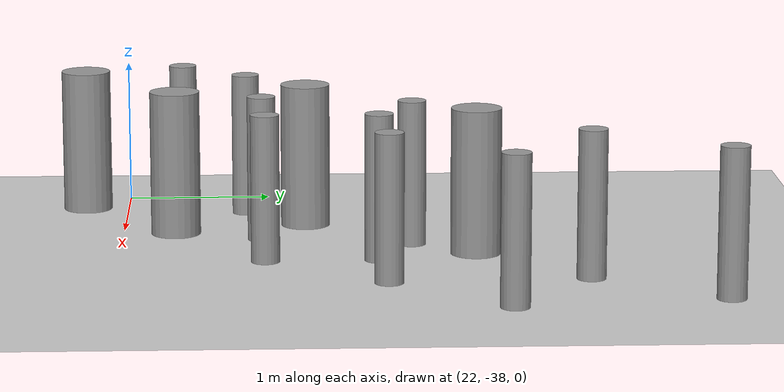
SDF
<sdf version="1.6">
 <world name="default">
  <model name="ground_plane">
   <static>1</static>
   <link name="link">
    <collision name="collision">
     <geometry><plane><normal>0 0 1</normal><size>100 100</size></plane></geometry>
     <surface><friction><ode><mu>100</mu><mu2>50</mu2></ode></friction></surface>
    </collision>
    <visual name="visual">
     <cast_shadows>0</cast_shadows>
     <geometry><plane><normal>0 0 1</normal><size>100 100</size></plane></geometry>
     <material>
      <script><uri>file://media/materials/scripts/gazebo.material</uri><name>Gazebo/Grey</name></script>
     </material>
    </visual>
   </link>
  </model>
  <model name="cyl_wall_clone_clone_1_clone_1_clone_clone_0_clone_0">
   <link name="link_0">
    <pose>-2.73893 -0.366465 0 0 -0 0</pose>
    <inertial>
     <mass>0.0374993</mass>
     <inertia>
      <ixx>0.00321281</ixx>
      <ixy>0</ixy>
      <ixz>0</ixz>
      <iyy>0.00321281</iyy>
      <iyz>0</iyz>
      <izz>0.000175774</izz>
     </inertia>
    </inertial>
    <visual name="visual">
     <geometry><cylinder><radius>0.0968661</radius><length>1</length></cylinder></geometry>
     <material>
      <lighting>1</lighting>
      <script><uri>file://media/materials/scripts/gazebo.material</uri><name>Gazebo/Grey</name></script>
      <ambient>0.3 0.3 0.3 1</ambient>
      <diffuse>0.7 0.7 0.7 1</diffuse>
      <specular>0.01 0.01 0.01 1</specular>
      <emissive>0 0 0 1</emissive>
     </material>
    </visual>
    <collision name="collision">
     <geometry><cylinder><radius>0.096866</radius><length>1</length></cylinder></geometry>
     <surface>
      <friction>
       <ode><mu>1</mu><mu2>1</mu2><fdir1>0 0 0</fdir1><slip1>0</slip1><slip2>0</slip2></ode>
       <torsional>
        <coefficient>1</coefficient>
        <patch_radius>0</patch_radius>
        <surface_radius>0</surface_radius>
        <use_patch_radius>1</use_patch_radius>
        <ode><slip>0</slip></ode>
       </torsional>
      </friction>
      <bounce><restitution_coefficient>0</restitution_coefficient><threshold>1e+06</threshold></bounce>
      <contact>
       <collide_without_contact>0</collide_without_contact>
       <collide_without_contact_bitmask>1</collide_without_contact_bitmask>
       <collide_bitmask>1</collide_bitmask>
       <ode>
        <soft_cfm>0</soft_cfm>
        <soft_erp>0.2</soft_erp>
        <kp>1e+13</kp>
        <kd>1</kd>
        <max_vel>0.01</max_vel>
        <min_depth>0</min_depth>
       </ode>
       <bullet>
        <split_impulse>1</split_impulse>
        <split_impulse_penetration_threshold>-0.01</split_impulse_penetration_threshold>
        <soft_cfm>0</soft_cfm>
        <soft_erp>0.2</soft_erp>
        <kp>1e+13</kp>
        <kd>1</kd>
       </bullet>
      </contact>
     </surface>
    </collision>
   </link>
   <link name="link_0_clone">
    <pose>-1.73893 0.61877 0 0 -0 0</pose>
    <inertial>
     <mass>0.0374993</mass>
     <inertia>
      <ixx>0.00321281</ixx>
      <ixy>0</ixy>
      <ixz>0</ixz>
      <iyy>0.00321281</iyy>
      <iyz>0</iyz>
      <izz>0.000175774</izz>
     </inertia>
    </inertial>
    <visual name="visual">
     <geometry><cylinder><radius>0.0968661</radius><length>1</length></cylinder></geometry>
     <material>
      <lighting>1</lighting>
      <script><uri>file://media/materials/scripts/gazebo.material</uri><name>Gazebo/Grey</name></script>
      <ambient>0.3 0.3 0.3 1</ambient>
      <diffuse>0.7 0.7 0.7 1</diffuse>
      <specular>0.01 0.01 0.01 1</specular>
      <emissive>0 0 0 1</emissive>
      <shader type="pixel"/>
     </material>
    </visual>
    <collision name="collision">
     <geometry><cylinder><radius>0.096866</radius><length>1</length></cylinder></geometry>
     <surface>
      <friction>
       <ode><mu>1</mu><mu2>1</mu2><fdir1>0 0 0</fdir1><slip1>0</slip1><slip2>0</slip2></ode>
       <torsional>
        <coefficient>1</coefficient>
        <patch_radius>0</patch_radius>
        <surface_radius>0</surface_radius>
        <use_patch_radius>1</use_patch_radius>
        <ode><slip>0</slip></ode>
       </torsional>
      </friction>
      <bounce><restitution_coefficient>0</restitution_coefficient><threshold>1e+06</threshold></bounce>
      <contact>
       <collide_without_contact>0</collide_without_contact>
       <collide_without_contact_bitmask>1</collide_without_contact_bitmask>
       <collide_bitmask>1</collide_bitmask>
       <ode>
        <soft_cfm>0</soft_cfm>
        <soft_erp>0.2</soft_erp>
        <kp>1e+13</kp>
        <kd>1</kd>
        <max_vel>0.01</max_vel>
        <min_depth>0</min_depth>
       </ode>
       <bullet>
        <split_impulse>1</split_impulse>
        <split_impulse_penetration_threshold>-0.01</split_impulse_penetration_threshold>
        <soft_cfm>0</soft_cfm>
        <soft_erp>0.2</soft_erp>
        <kp>1e+13</kp>
        <kd>1</kd>
       </bullet>
      </contact>
     </surface>
    </collision>
   </link>
   <link name="link_0_clone_clone">
    <pose>-0.327073 0.143919 0 0 -0 0</pose>
    <inertial>
     <mass>0.0374993</mass>
     <inertia>
      <ixx>0.00321281</ixx>
      <ixy>0</ixy>
      <ixz>0</ixz>
      <iyy>0.00321281</iyy>
      <iyz>0</iyz>
      <izz>0.000175774</izz>
     </inertia>
    </inertial>
    <visual name="visual">
     <geometry><cylinder><radius>0.0968661</radius><length>1</length></cylinder></geometry>
     <material>
      <lighting>1</lighting>
      <script><uri>file://media/materials/scripts/gazebo.material</uri><name>Gazebo/Grey</name></script>
      <ambient>0.3 0.3 0.3 1</ambient>
      <diffuse>0.7 0.7 0.7 1</diffuse>
      <specular>0.01 0.01 0.01 1</specular>
      <emissive>0 0 0 1</emissive>
      <shader type="pixel"/>
     </material>
    </visual>
    <collision name="collision">
     <geometry><cylinder><radius>0.096866</radius><length>1</length></cylinder></geometry>
     <surface>
      <friction>
       <ode><mu>1</mu><mu2>1</mu2><fdir1>0 0 0</fdir1><slip1>0</slip1><slip2>0</slip2></ode>
       <torsional>
        <coefficient>1</coefficient>
        <patch_radius>0</patch_radius>
        <surface_radius>0</surface_radius>
        <use_patch_radius>1</use_patch_radius>
        <ode><slip>0</slip></ode>
       </torsional>
      </friction>
      <bounce><restitution_coefficient>0</restitution_coefficient><threshold>1e+06</threshold></bounce>
      <contact>
       <collide_without_contact>0</collide_without_contact>
       <collide_without_contact_bitmask>1</collide_without_contact_bitmask>
       <collide_bitmask>1</collide_bitmask>
       <ode>
        <soft_cfm>0</soft_cfm>
        <soft_erp>0.2</soft_erp>
        <kp>1e+13</kp>
        <kd>1</kd>
        <max_vel>0.01</max_vel>
        <min_depth>0</min_depth>
       </ode>
       <bullet>
        <split_impulse>1</split_impulse>
        <split_impulse_penetration_threshold>-0.01</split_impulse_penetration_threshold>
        <soft_cfm>0</soft_cfm>
        <soft_erp>0.2</soft_erp>
        <kp>1e+13</kp>
        <kd>1</kd>
       </bullet>
      </contact>
     </surface>
    </collision>
   </link>
   <link name="link_0_clone_clone_0">
    <pose>1.26107 -0.419359 0 0 -0 0</pose>
    <inertial>
     <mass>0.0374993</mass>
     <inertia>
      <ixx>0.00321281</ixx>
      <ixy>0</ixy>
      <ixz>0</ixz>
      <iyy>0.00321281</iyy>
      <iyz>0</iyz>
      <izz>0.000175774</izz>
     </inertia>
    </inertial>
    <visual name="visual">
     <geometry><cylinder><radius>0.0968661</radius><length>1</length></cylinder></geometry>
     <material>
      <lighting>1</lighting>
      <script><uri>file://media/materials/scripts/gazebo.material</uri><name>Gazebo/Grey</name></script>
      <ambient>0.3 0.3 0.3 1</ambient>
      <diffuse>0.7 0.7 0.7 1</diffuse>
      <specular>0.01 0.01 0.01 1</specular>
      <emissive>0 0 0 1</emissive>
      <shader type="pixel"/>
     </material>
    </visual>
    <collision name="collision">
     <geometry><cylinder><radius>0.096866</radius><length>1</length></cylinder></geometry>
     <surface>
      <friction>
       <ode><mu>1</mu><mu2>1</mu2><fdir1>0 0 0</fdir1><slip1>0</slip1><slip2>0</slip2></ode>
       <torsional>
        <coefficient>1</coefficient>
        <patch_radius>0</patch_radius>
        <surface_radius>0</surface_radius>
        <use_patch_radius>1</use_patch_radius>
        <ode><slip>0</slip></ode>
       </torsional>
      </friction>
      <bounce><restitution_coefficient>0</restitution_coefficient><threshold>1e+06</threshold></bounce>
      <contact>
       <collide_without_contact>0</collide_without_contact>
       <collide_without_contact_bitmask>1</collide_without_contact_bitmask>
       <collide_bitmask>1</collide_bitmask>
       <ode>
        <soft_cfm>0</soft_cfm>
        <soft_erp>0.2</soft_erp>
        <kp>1e+13</kp>
        <kd>1</kd>
        <max_vel>0.01</max_vel>
        <min_depth>0</min_depth>
       </ode>
       <bullet>
        <split_impulse>1</split_impulse>
        <split_impulse_penetration_threshold>-0.01</split_impulse_penetration_threshold>
        <soft_cfm>0</soft_cfm>
        <soft_erp>0.2</soft_erp>
        <kp>1e+13</kp>
        <kd>1</kd>
       </bullet>
      </contact>
     </surface>
    </collision>
   </link>
   <link name="link_0_clone_clone_1">
    <pose>-1.73893 -0.277168 0 0 -0 0</pose>
    <inertial>
     <mass>0.0374993</mass>
     <inertia>
      <ixx>0.00321281</ixx>
      <ixy>0</ixy>
      <ixz>0</ixz>
      <iyy>0.00321281</iyy>
      <iyz>0</iyz>
      <izz>0.000175774</izz>
     </inertia>
    </inertial>
    <visual name="visual">
     <geometry><cylinder><radius>0.0968661</radius><length>1</length></cylinder></geometry>
     <material>
      <lighting>1</lighting>
      <script><uri>file://media/materials/scripts/gazebo.material</uri><name>Gazebo/Grey</name></script>
      <ambient>0.3 0.3 0.3 1</ambient>
      <diffuse>0.7 0.7 0.7 1</diffuse>
      <specular>0.01 0.01 0.01 1</specular>
      <emissive>0 0 0 1</emissive>
      <shader type="pixel"/>
     </material>
    </visual>
    <collision name="collision">
     <geometry><cylinder><radius>0.096866</radius><length>1</length></cylinder></geometry>
     <surface>
      <friction>
       <ode><mu>1</mu><mu2>1</mu2><fdir1>0 0 0</fdir1><slip1>0</slip1><slip2>0</slip2></ode>
       <torsional>
        <coefficient>1</coefficient>
        <patch_radius>0</patch_radius>
        <surface_radius>0</surface_radius>
        <use_patch_radius>1</use_patch_radius>
        <ode><slip>0</slip></ode>
       </torsional>
      </friction>
      <bounce><restitution_coefficient>0</restitution_coefficient><threshold>1e+06</threshold></bounce>
      <contact>
       <collide_without_contact>0</collide_without_contact>
       <collide_without_contact_bitmask>1</collide_without_contact_bitmask>
       <collide_bitmask>1</collide_bitmask>
       <ode>
        <soft_cfm>0</soft_cfm>
        <soft_erp>0.2</soft_erp>
        <kp>1e+13</kp>
        <kd>1</kd>
        <max_vel>0.01</max_vel>
        <min_depth>0</min_depth>
       </ode>
       <bullet>
        <split_impulse>1</split_impulse>
        <split_impulse_penetration_threshold>-0.01</split_impulse_penetration_threshold>
        <soft_cfm>0</soft_cfm>
        <soft_erp>0.2</soft_erp>
        <kp>1e+13</kp>
        <kd>1</kd>
       </bullet>
      </contact>
     </surface>
    </collision>
   </link>
   <link name="link_0_clone_clone_2">
    <pose>-0.738934 0.593961 0 0 -0 0</pose>
    <inertial>
     <mass>0.0374993</mass>
     <inertia>
      <ixx>0.00321281</ixx>
      <ixy>0</ixy>
      <ixz>0</ixz>
      <iyy>0.00321281</iyy>
      <iyz>0</iyz>
      <izz>0.000175774</izz>
     </inertia>
    </inertial>
    <visual name="visual">
     <geometry><cylinder><radius>0.0968661</radius><length>1</length></cylinder></geometry>
     <material>
      <lighting>1</lighting>
      <script><uri>file://media/materials/scripts/gazebo.material</uri><name>Gazebo/Grey</name></script>
      <ambient>0.3 0.3 0.3 1</ambient>
      <diffuse>0.7 0.7 0.7 1</diffuse>
      <specular>0.01 0.01 0.01 1</specular>
      <emissive>0 0 0 1</emissive>
      <shader type="pixel"/>
     </material>
    </visual>
    <collision name="collision">
     <geometry><cylinder><radius>0.096866</radius><length>1</length></cylinder></geometry>
     <surface>
      <friction>
       <ode><mu>1</mu><mu2>1</mu2><fdir1>0 0 0</fdir1><slip1>0</slip1><slip2>0</slip2></ode>
       <torsional>
        <coefficient>1</coefficient>
        <patch_radius>0</patch_radius>
        <surface_radius>0</surface_radius>
        <use_patch_radius>1</use_patch_radius>
        <ode><slip>0</slip></ode>
       </torsional>
      </friction>
      <bounce><restitution_coefficient>0</restitution_coefficient><threshold>1e+06</threshold></bounce>
      <contact>
       <collide_without_contact>0</collide_without_contact>
       <collide_without_contact_bitmask>1</collide_without_contact_bitmask>
       <collide_bitmask>1</collide_bitmask>
       <ode>
        <soft_cfm>0</soft_cfm>
        <soft_erp>0.2</soft_erp>
        <kp>1e+13</kp>
        <kd>1</kd>
        <max_vel>0.01</max_vel>
        <min_depth>0</min_depth>
       </ode>
       <bullet>
        <split_impulse>1</split_impulse>
        <split_impulse_penetration_threshold>-0.01</split_impulse_penetration_threshold>
        <soft_cfm>0</soft_cfm>
        <soft_erp>0.2</soft_erp>
        <kp>1e+13</kp>
        <kd>1</kd>
       </bullet>
      </contact>
     </surface>
    </collision>
   </link>
   <link name="link_0_clone_clone_3">
    <pose>0.261066 0.624849 0 0 -0 0</pose>
    <inertial>
     <mass>0.0374993</mass>
     <inertia>
      <ixx>0.00321281</ixx>
      <ixy>0</ixy>
      <ixz>0</ixz>
      <iyy>0.00321281</iyy>
      <iyz>0</iyz>
      <izz>0.000175774</izz>
     </inertia>
    </inertial>
    <visual name="visual">
     <geometry><cylinder><radius>0.0968661</radius><length>1</length></cylinder></geometry>
     <material>
      <lighting>1</lighting>
      <script><uri>file://media/materials/scripts/gazebo.material</uri><name>Gazebo/Grey</name></script>
      <ambient>0.3 0.3 0.3 1</ambient>
      <diffuse>0.7 0.7 0.7 1</diffuse>
      <specular>0.01 0.01 0.01 1</specular>
      <emissive>0 0 0 1</emissive>
      <shader type="pixel"/>
     </material>
    </visual>
    <collision name="collision">
     <geometry><cylinder><radius>0.096866</radius><length>1</length></cylinder></geometry>
     <surface>
      <friction>
       <ode><mu>1</mu><mu2>1</mu2><fdir1>0 0 0</fdir1><slip1>0</slip1><slip2>0</slip2></ode>
       <torsional>
        <coefficient>1</coefficient>
        <patch_radius>0</patch_radius>
        <surface_radius>0</surface_radius>
        <use_patch_radius>1</use_patch_radius>
        <ode><slip>0</slip></ode>
       </torsional>
      </friction>
      <bounce><restitution_coefficient>0</restitution_coefficient><threshold>1e+06</threshold></bounce>
      <contact>
       <collide_without_contact>0</collide_without_contact>
       <collide_without_contact_bitmask>1</collide_without_contact_bitmask>
       <collide_bitmask>1</collide_bitmask>
       <ode>
        <soft_cfm>0</soft_cfm>
        <soft_erp>0.2</soft_erp>
        <kp>1e+13</kp>
        <kd>1</kd>
        <max_vel>0.01</max_vel>
        <min_depth>0</min_depth>
       </ode>
       <bullet>
        <split_impulse>1</split_impulse>
        <split_impulse_penetration_threshold>-0.01</split_impulse_penetration_threshold>
        <soft_cfm>0</soft_cfm>
        <soft_erp>0.2</soft_erp>
        <kp>1e+13</kp>
        <kd>1</kd>
       </bullet>
      </contact>
     </surface>
    </collision>
   </link>
   <link name="link_0_clone_clone_4">
    <pose>-0.239049 -0.353105 0 0 -0 0</pose>
    <inertial>
     <mass>0.0374993</mass>
     <inertia>
      <ixx>0.00321281</ixx>
      <ixy>0</ixy>
      <ixz>0</ixz>
      <iyy>0.00321281</iyy>
      <iyz>0</iyz>
      <izz>0.000175774</izz>
     </inertia>
    </inertial>
    <visual name="visual">
     <geometry><cylinder><radius>0.0968661</radius><length>1</length></cylinder></geometry>
     <material>
      <lighting>1</lighting>
      <script><uri>file://media/materials/scripts/gazebo.material</uri><name>Gazebo/Grey</name></script>
      <ambient>0.3 0.3 0.3 1</ambient>
      <diffuse>0.7 0.7 0.7 1</diffuse>
      <specular>0.01 0.01 0.01 1</specular>
      <emissive>0 0 0 1</emissive>
      <shader type="pixel"/>
     </material>
    </visual>
    <collision name="collision">
     <geometry><cylinder><radius>0.096866</radius><length>1</length></cylinder></geometry>
     <surface>
      <friction>
       <ode><mu>1</mu><mu2>1</mu2><fdir1>0 0 0</fdir1><slip1>0</slip1><slip2>0</slip2></ode>
       <torsional>
        <coefficient>1</coefficient>
        <patch_radius>0</patch_radius>
        <surface_radius>0</surface_radius>
        <use_patch_radius>1</use_patch_radius>
        <ode><slip>0</slip></ode>
       </torsional>
      </friction>
      <bounce><restitution_coefficient>0</restitution_coefficient><threshold>1e+06</threshold></bounce>
      <contact>
       <collide_without_contact>0</collide_without_contact>
       <collide_without_contact_bitmask>1</collide_without_contact_bitmask>
       <collide_bitmask>1</collide_bitmask>
       <ode>
        <soft_cfm>0</soft_cfm>
        <soft_erp>0.2</soft_erp>
        <kp>1e+13</kp>
        <kd>1</kd>
        <max_vel>0.01</max_vel>
        <min_depth>0</min_depth>
       </ode>
       <bullet>
        <split_impulse>1</split_impulse>
        <split_impulse_penetration_threshold>-0.01</split_impulse_penetration_threshold>
        <soft_cfm>0</soft_cfm>
        <soft_erp>0.2</soft_erp>
        <kp>1e+13</kp>
        <kd>1</kd>
       </bullet>
      </contact>
     </surface>
    </collision>
   </link>
   <link name="link_0_clone_clone_5">
    <pose>0.672792 0.143919 0 0 -0 0</pose>
    <inertial>
     <mass>0.0374993</mass>
     <inertia>
      <ixx>0.00321281</ixx>
      <ixy>0</ixy>
      <ixz>0</ixz>
      <iyy>0.00321281</iyy>
      <iyz>0</iyz>
      <izz>0.000175774</izz>
     </inertia>
    </inertial>
    <visual name="visual">
     <geometry><cylinder><radius>0.0968661</radius><length>1</length></cylinder></geometry>
     <material>
      <lighting>1</lighting>
      <script><uri>file://media/materials/scripts/gazebo.material</uri><name>Gazebo/Grey</name></script>
      <ambient>0.3 0.3 0.3 1</ambient>
      <diffuse>0.7 0.7 0.7 1</diffuse>
      <specular>0.01 0.01 0.01 1</specular>
      <emissive>0 0 0 1</emissive>
      <shader type="pixel"/>
     </material>
    </visual>
    <collision name="collision">
     <geometry><cylinder><radius>0.096866</radius><length>1</length></cylinder></geometry>
     <surface>
      <friction>
       <ode><mu>1</mu><mu2>1</mu2><fdir1>0 0 0</fdir1><slip1>0</slip1><slip2>0</slip2></ode>
       <torsional>
        <coefficient>1</coefficient>
        <patch_radius>0</patch_radius>
        <surface_radius>0</surface_radius>
        <use_patch_radius>1</use_patch_radius>
        <ode><slip>0</slip></ode>
       </torsional>
      </friction>
      <bounce><restitution_coefficient>0</restitution_coefficient><threshold>1e+06</threshold></bounce>
      <contact>
       <collide_without_contact>0</collide_without_contact>
       <collide_without_contact_bitmask>1</collide_without_contact_bitmask>
       <collide_bitmask>1</collide_bitmask>
       <ode>
        <soft_cfm>0</soft_cfm>
        <soft_erp>0.2</soft_erp>
        <kp>1e+13</kp>
        <kd>1</kd>
        <max_vel>0.01</max_vel>
        <min_depth>0</min_depth>
       </ode>
       <bullet>
        <split_impulse>1</split_impulse>
        <split_impulse_penetration_threshold>-0.01</split_impulse_penetration_threshold>
        <soft_cfm>0</soft_cfm>
        <soft_erp>0.2</soft_erp>
        <kp>1e+13</kp>
        <kd>1</kd>
       </bullet>
      </contact>
     </surface>
    </collision>
   </link>
   <link name="link_0_clone_clone_6">
    <pose>1.84596 -0.433423 0 0 -0 0</pose>
    <inertial>
     <mass>0.0374993</mass>
     <inertia>
      <ixx>0.00321281</ixx>
      <ixy>0</ixy>
      <ixz>0</ixz>
      <iyy>0.00321281</iyy>
      <iyz>0</iyz>
      <izz>0.000175774</izz>
     </inertia>
    </inertial>
    <visual name="visual">
     <geometry><cylinder><radius>0.0968661</radius><length>1</length></cylinder></geometry>
     <material>
      <lighting>1</lighting>
      <script><uri>file://media/materials/scripts/gazebo.material</uri><name>Gazebo/Grey</name></script>
      <ambient>0.3 0.3 0.3 1</ambient>
      <diffuse>0.7 0.7 0.7 1</diffuse>
      <specular>0.01 0.01 0.01 1</specular>
      <emissive>0 0 0 1</emissive>
      <shader type="pixel"/>
     </material>
    </visual>
    <collision name="collision">
     <geometry><cylinder><radius>0.096866</radius><length>1</length></cylinder></geometry>
     <surface>
      <friction>
       <ode><mu>1</mu><mu2>1</mu2><fdir1>0 0 0</fdir1><slip1>0</slip1><slip2>0</slip2></ode>
       <torsional>
        <coefficient>1</coefficient>
        <patch_radius>0</patch_radius>
        <surface_radius>0</surface_radius>
        <use_patch_radius>1</use_patch_radius>
        <ode><slip>0</slip></ode>
       </torsional>
      </friction>
      <bounce><restitution_coefficient>0</restitution_coefficient><threshold>1e+06</threshold></bounce>
      <contact>
       <collide_without_contact>0</collide_without_contact>
       <collide_without_contact_bitmask>1</collide_without_contact_bitmask>
       <collide_bitmask>1</collide_bitmask>
       <ode>
        <soft_cfm>0</soft_cfm>
        <soft_erp>0.2</soft_erp>
        <kp>1e+13</kp>
        <kd>1</kd>
        <max_vel>0.01</max_vel>
        <min_depth>0</min_depth>
       </ode>
       <bullet>
        <split_impulse>1</split_impulse>
        <split_impulse_penetration_threshold>-0.01</split_impulse_penetration_threshold>
        <soft_cfm>0</soft_cfm>
        <soft_erp>0.2</soft_erp>
        <kp>1e+13</kp>
        <kd>1</kd>
       </bullet>
      </contact>
     </surface>
    </collision>
   </link>
   <link name="link_1">
    <pose>-0.738934 -0.397931 0 0 -0 0</pose>
    <inertial>
     <mass>0.117398</mass>
     <inertia>
      <ixx>0.0106445</ixx>
      <ixy>0</ixy>
      <ixz>0</ixz>
      <iyy>0.0106445</iyy>
      <iyz>0</iyz>
      <izz>0.00172278</izz>
     </inertia>
    </inertial>
    <visual name="visual">
     <geometry><cylinder><radius>0.171317</radius><length>1</length></cylinder></geometry>
     <material>
      <lighting>1</lighting>
      <script><uri>file://media/materials/scripts/gazebo.material</uri><name>Gazebo/Grey</name></script>
      <ambient>0.3 0.3 0.3 1</ambient>
      <diffuse>0.7 0.7 0.7 1</diffuse>
      <specular>0.01 0.01 0.01 1</specular>
      <emissive>0 0 0 1</emissive>
     </material>
    </visual>
    <collision name="collision">
     <geometry><cylinder><radius>0.171317</radius><length>1</length></cylinder></geometry>
     <surface>
      <friction>
       <ode><mu>1</mu><mu2>1</mu2><fdir1>0 0 0</fdir1><slip1>0</slip1><slip2>0</slip2></ode>
       <torsional>
        <coefficient>1</coefficient>
        <patch_radius>0</patch_radius>
        <surface_radius>0</surface_radius>
        <use_patch_radius>1</use_patch_radius>
        <ode><slip>0</slip></ode>
       </torsional>
      </friction>
      <bounce><restitution_coefficient>0</restitution_coefficient><threshold>1e+06</threshold></bounce>
      <contact>
       <collide_without_contact>0</collide_without_contact>
       <collide_without_contact_bitmask>1</collide_without_contact_bitmask>
       <collide_bitmask>1</collide_bitmask>
       <ode>
        <soft_cfm>0</soft_cfm>
        <soft_erp>0.2</soft_erp>
        <kp>1e+13</kp>
        <kd>1</kd>
        <max_vel>0.01</max_vel>
        <min_depth>0</min_depth>
       </ode>
       <bullet>
        <split_impulse>1</split_impulse>
        <split_impulse_penetration_threshold>-0.01</split_impulse_penetration_threshold>
        <soft_cfm>0</soft_cfm>
        <soft_erp>0.2</soft_erp>
        <kp>1e+13</kp>
        <kd>1</kd>
       </bullet>
      </contact>
     </surface>
    </collision>
   </link>
   <link name="link_1_clone">
    <pose>0.697784 -0.380861 0 0 -0 0</pose>
    <inertial>
     <mass>0.117398</mass>
     <inertia>
      <ixx>0.0106445</ixx>
      <ixy>0</ixy>
      <ixz>0</ixz>
      <iyy>0.0106445</iyy>
      <iyz>0</iyz>
      <izz>0.00172278</izz>
     </inertia>
    </inertial>
    <visual name="visual">
     <geometry><cylinder><radius>0.171317</radius><length>1</length></cylinder></geometry>
     <material>
      <lighting>1</lighting>
      <script><uri>file://media/materials/scripts/gazebo.material</uri><name>Gazebo/Grey</name></script>
      <ambient>0.3 0.3 0.3 1</ambient>
      <diffuse>0.7 0.7 0.7 1</diffuse>
      <specular>0.01 0.01 0.01 1</specular>
      <emissive>0 0 0 1</emissive>
      <shader type="pixel"/>
     </material>
    </visual>
    <collision name="collision">
     <geometry><cylinder><radius>0.171317</radius><length>1</length></cylinder></geometry>
     <surface>
      <friction>
       <ode><mu>1</mu><mu2>1</mu2><fdir1>0 0 0</fdir1><slip1>0</slip1><slip2>0</slip2></ode>
       <torsional>
        <coefficient>1</coefficient>
        <patch_radius>0</patch_radius>
        <surface_radius>0</surface_radius>
        <use_patch_radius>1</use_patch_radius>
        <ode><slip>0</slip></ode>
       </torsional>
      </friction>
      <bounce><restitution_coefficient>0</restitution_coefficient><threshold>1e+06</threshold></bounce>
      <contact>
       <collide_without_contact>0</collide_without_contact>
       <collide_without_contact_bitmask>1</collide_without_contact_bitmask>
       <collide_bitmask>1</collide_bitmask>
       <ode>
        <soft_cfm>0</soft_cfm>
        <soft_erp>0.2</soft_erp>
        <kp>1e+13</kp>
        <kd>1</kd>
        <max_vel>0.01</max_vel>
        <min_depth>0</min_depth>
       </ode>
       <bullet>
        <split_impulse>1</split_impulse>
        <split_impulse_penetration_threshold>-0.01</split_impulse_penetration_threshold>
        <soft_cfm>0</soft_cfm>
        <soft_erp>0.2</soft_erp>
        <kp>1e+13</kp>
        <kd>1</kd>
       </bullet>
      </contact>
     </surface>
    </collision>
   </link>
   <link name="link_1_clone_0">
    <pose>1.26107 0.358974 0 0 -0 0</pose>
    <inertial>
     <mass>0.117398</mass>
     <inertia>
      <ixx>0.0106445</ixx>
      <ixy>0</ixy>
      <ixz>0</ixz>
      <iyy>0.0106445</iyy>
      <iyz>0</iyz>
      <izz>0.00172278</izz>
     </inertia>
    </inertial>
    <visual name="visual">
     <geometry><cylinder><radius>0.171317</radius><length>1</length></cylinder></geometry>
     <material>
      <lighting>1</lighting>
      <script><uri>file://media/materials/scripts/gazebo.material</uri><name>Gazebo/Grey</name></script>
      <ambient>0.3 0.3 0.3 1</ambient>
      <diffuse>0.7 0.7 0.7 1</diffuse>
      <specular>0.01 0.01 0.01 1</specular>
      <emissive>0 0 0 1</emissive>
      <shader type="pixel"/>
     </material>
    </visual>
    <collision name="collision">
     <geometry><cylinder><radius>0.171317</radius><length>1</length></cylinder></geometry>
     <surface>
      <friction>
       <ode><mu>1</mu><mu2>1</mu2><fdir1>0 0 0</fdir1><slip1>0</slip1><slip2>0</slip2></ode>
       <torsional>
        <coefficient>1</coefficient>
        <patch_radius>0</patch_radius>
        <surface_radius>0</surface_radius>
        <use_patch_radius>1</use_patch_radius>
        <ode><slip>0</slip></ode>
       </torsional>
      </friction>
      <bounce><restitution_coefficient>0</restitution_coefficient><threshold>1e+06</threshold></bounce>
      <contact>
       <collide_without_contact>0</collide_without_contact>
       <collide_without_contact_bitmask>1</collide_without_contact_bitmask>
       <collide_bitmask>1</collide_bitmask>
       <ode>
        <soft_cfm>0</soft_cfm>
        <soft_erp>0.2</soft_erp>
        <kp>1e+13</kp>
        <kd>1</kd>
        <max_vel>0.01</max_vel>
        <min_depth>0</min_depth>
       </ode>
       <bullet>
        <split_impulse>1</split_impulse>
        <split_impulse_penetration_threshold>-0.01</split_impulse_penetration_threshold>
        <soft_cfm>0</soft_cfm>
        <soft_erp>0.2</soft_erp>
        <kp>1e+13</kp>
        <kd>1</kd>
       </bullet>
      </contact>
     </surface>
    </collision>
   </link>
   <link name="link_1_clone_1">
    <pose>2.26107 0.143919 0 0 -0 0</pose>
    <inertial>
     <mass>0.117398</mass>
     <inertia>
      <ixx>0.0106445</ixx>
      <ixy>0</ixy>
      <ixz>0</ixz>
      <iyy>0.0106445</iyy>
      <iyz>0</iyz>
      <izz>0.00172278</izz>
     </inertia>
    </inertial>
    <visual name="visual">
     <geometry><cylinder><radius>0.171317</radius><length>1</length></cylinder></geometry>
     <material>
      <lighting>1</lighting>
      <script><uri>file://media/materials/scripts/gazebo.material</uri><name>Gazebo/Grey</name></script>
      <ambient>0.3 0.3 0.3 1</ambient>
      <diffuse>0.7 0.7 0.7 1</diffuse>
      <specular>0.01 0.01 0.01 1</specular>
      <emissive>0 0 0 1</emissive>
      <shader type="pixel"/>
     </material>
    </visual>
    <collision name="collision">
     <geometry><cylinder><radius>0.171317</radius><length>1</length></cylinder></geometry>
     <surface>
      <friction>
       <ode><mu>1</mu><mu2>1</mu2><fdir1>0 0 0</fdir1><slip1>0</slip1><slip2>0</slip2></ode>
       <torsional>
        <coefficient>1</coefficient>
        <patch_radius>0</patch_radius>
        <surface_radius>0</surface_radius>
        <use_patch_radius>1</use_patch_radius>
        <ode><slip>0</slip></ode>
       </torsional>
      </friction>
      <bounce><restitution_coefficient>0</restitution_coefficient><threshold>1e+06</threshold></bounce>
      <contact>
       <collide_without_contact>0</collide_without_contact>
       <collide_without_contact_bitmask>1</collide_without_contact_bitmask>
       <collide_bitmask>1</collide_bitmask>
       <ode>
        <soft_cfm>0</soft_cfm>
        <soft_erp>0.2</soft_erp>
        <kp>1e+13</kp>
        <kd>1</kd>
        <max_vel>0.01</max_vel>
        <min_depth>0</min_depth>
       </ode>
       <bullet>
        <split_impulse>1</split_impulse>
        <split_impulse_penetration_threshold>-0.01</split_impulse_penetration_threshold>
        <soft_cfm>0</soft_cfm>
        <soft_erp>0.2</soft_erp>
        <kp>1e+13</kp>
        <kd>1</kd>
       </bullet>
      </contact>
     </surface>
    </collision>
   </link>
   <static>1</static>
   <pose>23.5875 -36.4297 0.5 0 0 -2.24061</pose>
  </model>
 </world>
</sdf>
